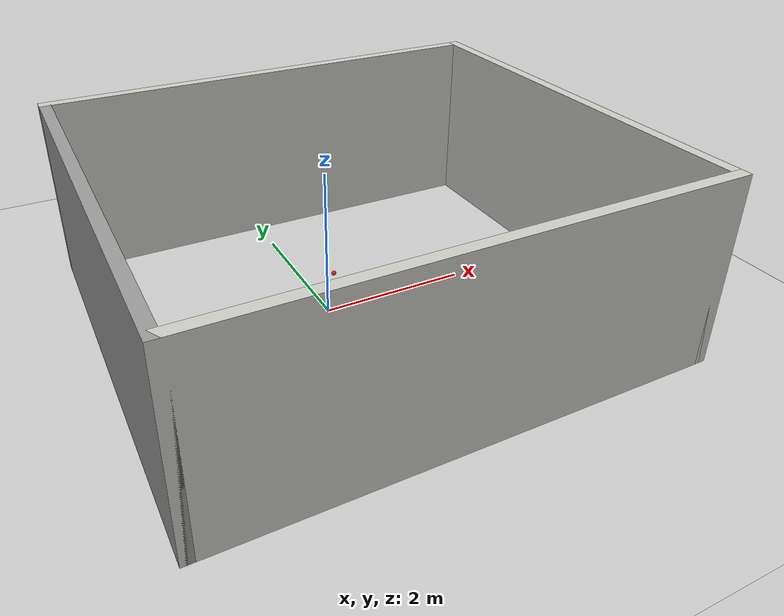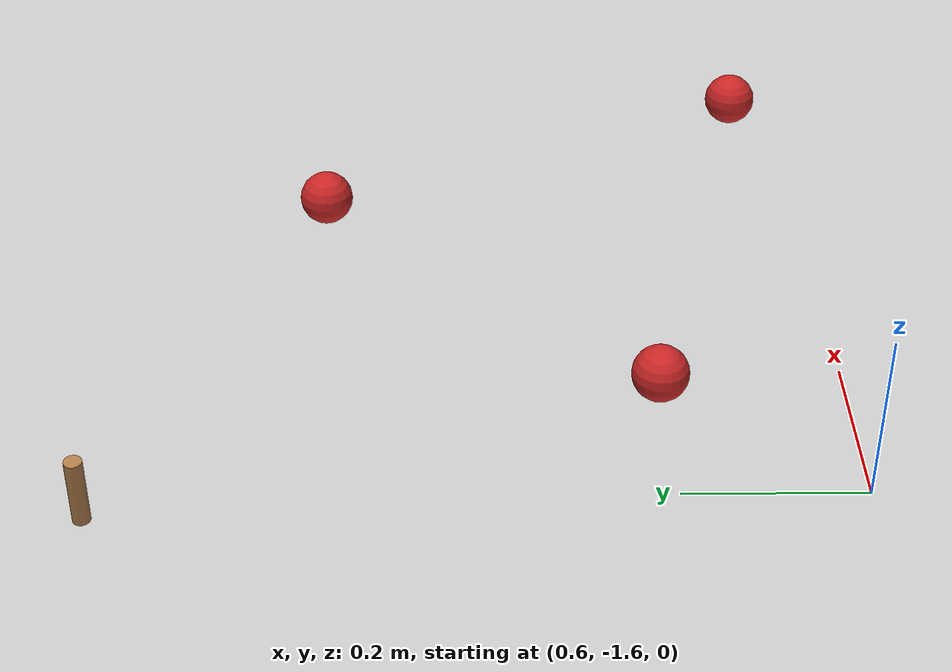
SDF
<sdf version="1.7">
 <world name="default">
  <light name="sun" type="directional">
   <pose>0 0 10 0 -0 0</pose>
   <diffuse>0.8 0.8 0.8 1</diffuse>
   <specular>0.2 0.2 0.2 1</specular>
   <attenuation>
    <range>1000</range>
    <constant>0.9</constant>
    <linear>0.01</linear>
    <quadratic>0.001</quadratic>
   </attenuation>
   <direction>-0.5 0.1 -0.9</direction>
   <spot><inner_angle>0</inner_angle><outer_angle>0</outer_angle><falloff>0</falloff></spot>
  </light>
  <model name="ground_plane">
   <static>1</static>
   <link name="link">
    <collision name="collision">
     <geometry><plane><normal>0 0 1</normal><size>100 100</size></plane></geometry>
     <surface>
      <contact><collide_bitmask>65535</collide_bitmask></contact>
      <friction><ode><mu>100</mu><mu2>50</mu2></ode></friction>
     </surface>
    </collision>
    <visual name="visual">
     <cast_shadows>0</cast_shadows>
     <geometry><plane><normal>0 0 1</normal><size>100 100</size></plane></geometry>
     <material>
      <script><uri>file://media/materials/scripts/gazebo.material</uri><name>Gazebo/Grey</name></script>
     </material>
    </visual>
   </link>
  </model>
  <gravity>0 0 -9.8</gravity>
  <magnetic_field>6e-06 2.3e-05 -4.2e-05</magnetic_field>
  <atmosphere type="adiabatic"/>
  <physics type="ode">
   <max_step_size>0.001</max_step_size>
   <real_time_factor>1</real_time_factor>
   <real_time_update_rate>1000</real_time_update_rate>
  </physics>
  <scene><ambient>0.4 0.4 0.4 1</ambient><background>0.7 0.7 0.7 1</background><shadows>1</shadows></scene>
  <audio><device>default</device></audio>
  <spherical_coordinates>
   <surface_model>EARTH_WGS84</surface_model>
   <latitude_deg>0</latitude_deg>
   <longitude_deg>0</longitude_deg>
   <elevation>0</elevation>
   <heading_deg>0</heading_deg>
  </spherical_coordinates>
  <model name="RoboCup SPL Ball">
   <static>0</static>
   <link name="ball">
    <inertial>
     <mass>0.0056</mass>
     <inertia>
      <ixx>2.37e-06</ixx>
      <iyy>2.37e-06</iyy>
      <izz>2.37e-06</izz>
      <ixy>0</ixy>
      <ixz>0</ixz>
      <iyz>0</iyz>
     </inertia>
    </inertial>
    <collision name="collision"><geometry><sphere><radius>0.0325</radius></sphere></geometry></collision>
    <visual name="visual">
     <geometry><sphere><radius>0.0325</radius></sphere></geometry>
     <material>
      <script><uri>file://media/materials/scripts/gazebo.material</uri><name>Gazebo/RedBright</name></script>
     </material>
    </visual>
   </link>
   <pose>1.34199 -1.53864 0.0325 0 -0 0</pose>
  </model>
  <model name="RoboCup SPL Ball_clone">
   <static>0</static>
   <link name="ball">
    <inertial>
     <mass>0.0056</mass>
     <inertia>
      <ixx>2.37e-06</ixx>
      <iyy>2.37e-06</iyy>
      <izz>2.37e-06</izz>
      <ixy>0</ixy>
      <ixz>0</ixz>
      <iyz>0</iyz>
     </inertia>
    </inertial>
    <collision name="collision"><geometry><sphere><radius>0.0325</radius></sphere></geometry></collision>
    <visual name="visual">
     <geometry><sphere><radius>0.0325</radius></sphere></geometry>
     <material>
      <script><uri>file://media/materials/scripts/gazebo.material</uri><name>Gazebo/RedBright</name></script>
     </material>
    </visual>
   </link>
   <pose>1.11088 -1.00632 0.0325 0 -0 0</pose>
  </model>
  <model name="RoboCup SPL Ball_clone_0">
   <static>0</static>
   <link name="ball">
    <inertial>
     <mass>0.0056</mass>
     <inertia>
      <ixx>2.37e-06</ixx>
      <iyy>2.37e-06</iyy>
      <izz>2.37e-06</izz>
      <ixy>0</ixy>
      <ixz>0</ixz>
      <iyz>0</iyz>
     </inertia>
    </inertial>
    <collision name="collision"><geometry><sphere><radius>0.0325</radius></sphere></geometry></collision>
    <visual name="visual">
     <geometry><sphere><radius>0.0325</radius></sphere></geometry>
     <material>
      <script><uri>file://media/materials/scripts/gazebo.material</uri><name>Gazebo/RedBright</name></script>
     </material>
    </visual>
   </link>
   <pose>0.760501 -1.3919 0.0325 0 -0 0</pose>
  </model>
  <model name="RoboCup SPL Ball_clone_1">
   <static>0</static>
   <link name="ball">
    <inertial>
     <mass>0.0056</mass>
     <inertia>
      <ixx>2.37e-06</ixx>
      <iyy>2.37e-06</iyy>
      <izz>2.37e-06</izz>
      <ixy>0</ixy>
      <ixz>0</ixz>
      <iyz>0</iyz>
     </inertia>
    </inertial>
    <collision name="collision"><geometry><sphere><radius>0.0325</radius></sphere></geometry></collision>
    <visual name="visual">
     <geometry><sphere><radius>0.0325</radius></sphere></geometry>
     <material>
      <script><uri>file://media/materials/scripts/gazebo.material</uri><name>Gazebo/RedBright</name></script>
     </material>
    </visual>
   </link>
   <pose>0.449168 0.769858 0.0325 0 -0 0</pose>
  </model>
  <model name="wooden_peg">
   <link name="link">
    <pose>0 0 0.04 0 -0 0</pose>
    <inertial>
     <mass>0.0175</mass>
     <inertia>
      <ixx>9.74923e-06</ixx>
      <ixy>0</ixy>
      <ixz>0</ixz>
      <iyy>9.74923e-06</iyy>
      <iyz>0</iyz>
      <izz>8.31797e-07</izz>
     </inertia>
    </inertial>
    <collision name="collision">
     <geometry><cylinder><radius>0.00975</radius><length>0.08</length></cylinder></geometry>
     <surface>
      <contact>
       <poissons_ratio>0.347</poissons_ratio>
       <elastic_modulus>8.8e+09</elastic_modulus>
       <ode><kp>100000</kp><kd>100</kd><max_vel>100</max_vel><min_depth>0.001</min_depth></ode>
      </contact>
      <friction>
       <torsional>
        <coefficient>1</coefficient>
        <use_patch_radius>0</use_patch_radius>
        <surface_radius>0.01</surface_radius>
       </torsional>
      </friction>
     </surface>
    </collision>
    <visual name="visual">
     <geometry><cylinder><radius>0.00975</radius><length>0.08</length></cylinder></geometry>
     <material>
      <script><uri>file://media/materials/scripts/gazebo.material</uri><name>Gazebo/Wood</name></script>
     </material>
    </visual>
   </link>
   <pose>0.571347 -0.778611 -0.001 0 -0 0</pose>
  </model>
  <model name="jeeny_bot_box1">
   <pose>0.375 -0.16 0 0 -0 0</pose>
   <link name="Wall_0">
    <collision name="Wall_0_Collision">
     <geometry><box><size>6.5 0.15 2.5</size></box></geometry>
     <pose>0 0 1.25 0 -0 0</pose>
    </collision>
    <visual name="Wall_0_Visual">
     <pose>0 0 1.25 0 -0 0</pose>
     <geometry><box><size>6.5 0.15 2.5</size></box></geometry>
     <material>
      <script><uri>file://media/materials/scripts/gazebo.material</uri><name>Gazebo/CeilingTiled</name></script>
      <ambient>1 1 1 1</ambient>
     </material>
     <meta><layer>0</layer></meta>
    </visual>
    <pose>0 -2.8 0 0 -0 0</pose>
   </link>
   <link name="Wall_1">
    <collision name="Wall_1_Collision">
     <geometry><box><size>5.75 0.15 2.5</size></box></geometry>
     <pose>0 0 1.25 0 -0 0</pose>
    </collision>
    <visual name="Wall_1_Visual">
     <pose>0 0 1.25 0 -0 0</pose>
     <geometry><box><size>5.75 0.15 2.5</size></box></geometry>
     <material>
      <script><uri>file://media/materials/scripts/gazebo.material</uri><name>Gazebo/CeilingTiled</name></script>
      <ambient>1 1 1 1</ambient>
     </material>
     <meta><layer>0</layer></meta>
    </visual>
    <pose>3.175 0 0 0 -0 1.5708</pose>
   </link>
   <link name="Wall_2">
    <collision name="Wall_2_Collision">
     <geometry><box><size>6.5 0.15 2.5</size></box></geometry>
     <pose>0 0 1.25 0 -0 0</pose>
    </collision>
    <visual name="Wall_2_Visual">
     <pose>0 0 1.25 0 -0 0</pose>
     <geometry><box><size>6.5 0.15 2.5</size></box></geometry>
     <material>
      <script><uri>file://media/materials/scripts/gazebo.material</uri><name>Gazebo/CeilingTiled</name></script>
      <ambient>1 1 1 1</ambient>
     </material>
     <meta><layer>0</layer></meta>
    </visual>
    <pose>0 2.8 0 0 -0 3.14159</pose>
   </link>
   <link name="Wall_3">
    <collision name="Wall_3_Collision">
     <geometry><box><size>5.75 0.15 2.5</size></box></geometry>
     <pose>0 0 1.25 0 -0 0</pose>
    </collision>
    <visual name="Wall_3_Visual">
     <pose>0 0 1.25 0 -0 0</pose>
     <geometry><box><size>5.75 0.15 2.5</size></box></geometry>
     <material>
      <script><uri>file://media/materials/scripts/gazebo.material</uri><name>Gazebo/Grey</name></script>
      <ambient>1 1 1 1</ambient>
     </material>
     <meta><layer>0</layer></meta>
    </visual>
    <pose>-3.175 0 0 0 -0 -1.5708</pose>
   </link>
   <static>1</static>
  </model>
 </world>
</sdf>
